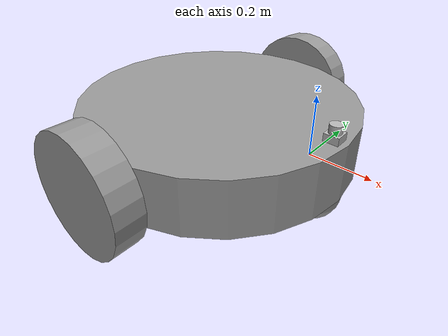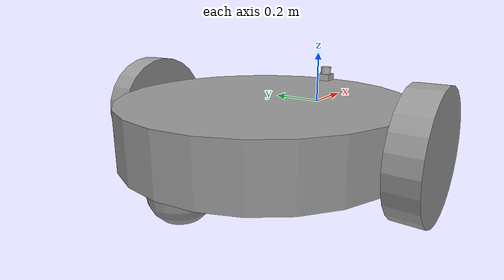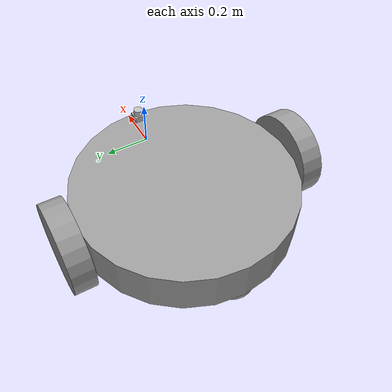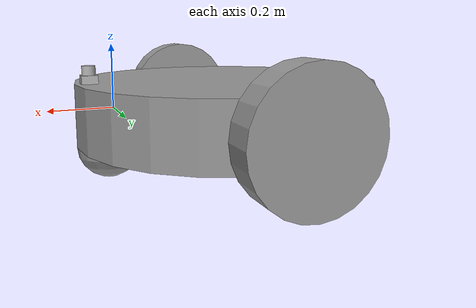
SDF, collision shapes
<?xml version='1.0'?>
<sdf version='1.7'>
  <model name='ddr1'>
    <link name='link_0'>
      <inertial>
        <mass>92.2843</mass>
        <inertia>
          <ixx>5.84467</ixx>
          <ixy>0</ixy>
          <ixz>0</ixz>
          <iyy>5.84467</iyy>
          <iyz>0</iyz>
          <izz>11.5355</izz>
        </inertia>
        <pose>0 0 0 0 -0 0</pose>
      </inertial>
      <pose>-0.383634 0.0024 -0.020094 0 -0 0</pose>
      <gravity>1</gravity>
      <self_collide>0</self_collide>
      <kinematic>0</kinematic>
      <enable_wind>0</enable_wind>
      <visual name='visual'>
        <pose>0 0 0 0 -0 0</pose>
        <geometry>
          <cylinder>
            <radius>0.5</radius>
            <length>0.2</length>
          </cylinder>
        </geometry>
        <material>
          <lighting>1</lighting>
          <script>
            <uri>file://media/materials/scripts/gazebo.material</uri>
            <name>Gazebo/Grey</name>
          </script>
          <shader type='pixel'>
            <normal_map>__default__</normal_map>
          </shader>
          <ambient>0.3 0.3 0.3 1</ambient>
          <diffuse>0.7 0.7 0.7 1</diffuse>
          <specular>0.01 0.01 0.01 1</specular>
          <emissive>0 0 0 1</emissive>
        </material>
        <transparency>0</transparency>
        <cast_shadows>1</cast_shadows>
      </visual>
      <collision name='collision'>
        <laser_retro>0</laser_retro>
        <max_contacts>10</max_contacts>
        <pose>0 0 0 0 -0 0</pose>
        <geometry>
          <cylinder>
            <radius>0.5</radius>
            <length>0.2</length>
          </cylinder>
        </geometry>
        <surface>
          <friction>
            <ode>
              <mu>1</mu>
              <mu2>1</mu2>
              <fdir1>0 0 0</fdir1>
              <slip1>0</slip1>
              <slip2>0</slip2>
            </ode>
            <torsional>
              <coefficient>1</coefficient>
              <patch_radius>0</patch_radius>
              <surface_radius>0</surface_radius>
              <use_patch_radius>1</use_patch_radius>
              <ode>
                <slip>0</slip>
              </ode>
            </torsional>
          </friction>
          <bounce>
            <restitution_coefficient>0</restitution_coefficient>
            <threshold>1e+06</threshold>
          </bounce>
          <contact>
            <collide_without_contact>0</collide_without_contact>
            <collide_without_contact_bitmask>1</collide_without_contact_bitmask>
            <collide_bitmask>1</collide_bitmask>
            <ode>
              <soft_cfm>0</soft_cfm>
              <soft_erp>0.2</soft_erp>
              <kp>1e+13</kp>
              <kd>1</kd>
              <max_vel>0.01</max_vel>
              <min_depth>0</min_depth>
            </ode>
            <bullet>
              <split_impulse>1</split_impulse>
              <split_impulse_penetration_threshold>-0.01</split_impulse_penetration_threshold>
              <soft_cfm>0</soft_cfm>
              <soft_erp>0.2</soft_erp>
              <kp>1e+13</kp>
              <kd>1</kd>
            </bullet>
          </contact>
        </surface>
      </collision>
    </link>
    <link name='link_2'>
      <inertial>
        <mass>39.3746</mass>
        <inertia>
          <ixx>0.629994</ixx>
          <ixy>0</ixy>
          <ixz>0</ixz>
          <iyy>0.629994</iyy>
          <iyz>0</iyz>
          <izz>0.629994</izz>
        </inertia>
        <pose>0 0 0 0 -0 0</pose>
      </inertial>
      <pose>-0.783634 0.0024 -0.120094 0 -0 0</pose>
      <gravity>1</gravity>
      <self_collide>0</self_collide>
      <kinematic>0</kinematic>
      <enable_wind>0</enable_wind>
      <visual name='visual'>
        <pose>0 0 0 0 -0 0</pose>
        <geometry>
          <sphere>
            <radius>0.1</radius>
          </sphere>
        </geometry>
        <material>
          <lighting>1</lighting>
          <script>
            <uri>file://media/materials/scripts/gazebo.material</uri>
            <name>Gazebo/Grey</name>
          </script>
          <shader type='pixel'>
            <normal_map>__default__</normal_map>
          </shader>
          <ambient>0.3 0.3 0.3 1</ambient>
          <diffuse>0.7 0.7 0.7 1</diffuse>
          <specular>0.01 0.01 0.01 1</specular>
          <emissive>0 0 0 1</emissive>
        </material>
        <transparency>0</transparency>
        <cast_shadows>1</cast_shadows>
      </visual>
      <collision name='collision'>
        <laser_retro>0</laser_retro>
        <max_contacts>10</max_contacts>
        <pose>0 0 0 0 -0 0</pose>
        <geometry>
          <sphere>
            <radius>0.1</radius>
          </sphere>
        </geometry>
        <surface>
          <friction>
            <ode>
              <mu>1</mu>
              <mu2>1</mu2>
              <fdir1>0 0 0</fdir1>
              <slip1>0</slip1>
              <slip2>0</slip2>
            </ode>
            <torsional>
              <coefficient>1</coefficient>
              <patch_radius>0</patch_radius>
              <surface_radius>0</surface_radius>
              <use_patch_radius>1</use_patch_radius>
              <ode>
                <slip>0</slip>
              </ode>
            </torsional>
          </friction>
          <bounce>
            <restitution_coefficient>0</restitution_coefficient>
            <threshold>1e+06</threshold>
          </bounce>
          <contact>
            <collide_without_contact>0</collide_without_contact>
            <collide_without_contact_bitmask>1</collide_without_contact_bitmask>
            <collide_bitmask>1</collide_bitmask>
            <ode>
              <soft_cfm>0</soft_cfm>
              <soft_erp>0.2</soft_erp>
              <kp>1e+13</kp>
              <kd>1</kd>
              <max_vel>0.01</max_vel>
              <min_depth>0</min_depth>
            </ode>
            <bullet>
              <split_impulse>1</split_impulse>
              <split_impulse_penetration_threshold>-0.01</split_impulse_penetration_threshold>
              <soft_cfm>0</soft_cfm>
              <soft_erp>0.2</soft_erp>
              <kp>1e+13</kp>
              <kd>1</kd>
            </bullet>
          </contact>
        </surface>
      </collision>
    </link>
    <link name='link_2_clone'>
      <inertial>
        <mass>39.3746</mass>
        <inertia>
          <ixx>0.629994</ixx>
          <ixy>0</ixy>
          <ixz>0</ixz>
          <iyy>0.629994</iyy>
          <iyz>0</iyz>
          <izz>0.629994</izz>
        </inertia>
        <pose>0 0 0 0 -0 0</pose>
      </inertial>
      <pose>0.016366 0.0024 -0.120094 0 -0 0</pose>
      <gravity>1</gravity>
      <self_collide>0</self_collide>
      <kinematic>0</kinematic>
      <enable_wind>0</enable_wind>
      <visual name='visual'>
        <pose>0 0 0 0 -0 0</pose>
        <geometry>
          <sphere>
            <radius>0.1</radius>
          </sphere>
        </geometry>
        <material>
          <lighting>1</lighting>
          <script>
            <uri>file://media/materials/scripts/gazebo.material</uri>
            <name>Gazebo/Grey</name>
          </script>
          <shader type='pixel'>
            <normal_map>__default__</normal_map>
          </shader>
          <ambient>0.3 0.3 0.3 1</ambient>
          <diffuse>0.7 0.7 0.7 1</diffuse>
          <specular>0.01 0.01 0.01 1</specular>
          <emissive>0 0 0 1</emissive>
        </material>
        <transparency>0</transparency>
        <cast_shadows>1</cast_shadows>
      </visual>
      <collision name='collision'>
        <laser_retro>0</laser_retro>
        <max_contacts>10</max_contacts>
        <pose>0 0 0 0 -0 0</pose>
        <geometry>
          <sphere>
            <radius>0.1</radius>
          </sphere>
        </geometry>
        <surface>
          <friction>
            <ode>
              <mu>1</mu>
              <mu2>1</mu2>
              <fdir1>0 0 0</fdir1>
              <slip1>0</slip1>
              <slip2>0</slip2>
            </ode>
            <torsional>
              <coefficient>1</coefficient>
              <patch_radius>0</patch_radius>
              <surface_radius>0</surface_radius>
              <use_patch_radius>1</use_patch_radius>
              <ode>
                <slip>0</slip>
              </ode>
            </torsional>
          </friction>
          <bounce>
            <restitution_coefficient>0</restitution_coefficient>
            <threshold>1e+06</threshold>
          </bounce>
          <contact>
            <collide_without_contact>0</collide_without_contact>
            <collide_without_contact_bitmask>1</collide_without_contact_bitmask>
            <collide_bitmask>1</collide_bitmask>
            <ode>
              <soft_cfm>0</soft_cfm>
              <soft_erp>0.2</soft_erp>
              <kp>1e+13</kp>
              <kd>1</kd>
              <max_vel>0.01</max_vel>
              <min_depth>0</min_depth>
            </ode>
            <bullet>
              <split_impulse>1</split_impulse>
              <split_impulse_penetration_threshold>-0.01</split_impulse_penetration_threshold>
              <soft_cfm>0</soft_cfm>
              <soft_erp>0.2</soft_erp>
              <kp>1e+13</kp>
              <kd>1</kd>
            </bullet>
          </contact>
        </surface>
      </collision>
    </link>
    <link name='link_3'>
      <inertial>
        <mass>922.843</mass>
        <inertia>
          <ixx>134.581</ixx>
          <ixy>0</ixy>
          <ixz>0</ixz>
          <iyy>134.581</iyy>
          <iyz>0</iyz>
          <izz>115.355</izz>
        </inertia>
        <pose>0 0 0 0 -0 0</pose>
      </inertial>
      <pose>-0.383634 0.5524 -0.020094 1.5707 -0 0</pose>
      <gravity>1</gravity>
      <self_collide>0</self_collide>
      <kinematic>0</kinematic>
      <enable_wind>0</enable_wind>
      <visual name='visual'>
        <pose>0 0 -0 0 -0 0</pose>
        <geometry>
          <cylinder>
            <radius>0.2</radius>
            <length>0.1</length>
          </cylinder>
        </geometry>
        <material>
          <lighting>1</lighting>
          <script>
            <uri>file://media/materials/scripts/gazebo.material</uri>
            <name>Gazebo/Grey</name>
          </script>
          <shader type='pixel'>
            <normal_map>__default__</normal_map>
          </shader>
          <ambient>0.3 0.3 0.3 1</ambient>
          <diffuse>0.7 0.7 0.7 1</diffuse>
          <specular>0.01 0.01 0.01 1</specular>
          <emissive>0 0 0 1</emissive>
        </material>
        <transparency>0</transparency>
        <cast_shadows>1</cast_shadows>
      </visual>
      <collision name='collision'>
        <laser_retro>0</laser_retro>
        <max_contacts>10</max_contacts>
        <pose>0 0 0 0 -0 0</pose>
        <geometry>
          <cylinder>
            <radius>0.2</radius>
            <length>0.1</length>
          </cylinder>
        </geometry>
        <surface>
          <friction>
            <ode>
              <mu>1</mu>
              <mu2>1</mu2>
              <fdir1>0 0 0</fdir1>
              <slip1>0</slip1>
              <slip2>0</slip2>
            </ode>
            <torsional>
              <coefficient>1</coefficient>
              <patch_radius>0</patch_radius>
              <surface_radius>0</surface_radius>
              <use_patch_radius>1</use_patch_radius>
              <ode>
                <slip>0</slip>
              </ode>
            </torsional>
          </friction>
          <bounce>
            <restitution_coefficient>0</restitution_coefficient>
            <threshold>1e+06</threshold>
          </bounce>
          <contact>
            <collide_without_contact>0</collide_without_contact>
            <collide_without_contact_bitmask>1</collide_without_contact_bitmask>
            <collide_bitmask>1</collide_bitmask>
            <ode>
              <soft_cfm>0</soft_cfm>
              <soft_erp>0.2</soft_erp>
              <kp>1e+13</kp>
              <kd>1</kd>
              <max_vel>0.01</max_vel>
              <min_depth>0</min_depth>
            </ode>
            <bullet>
              <split_impulse>1</split_impulse>
              <split_impulse_penetration_threshold>-0.01</split_impulse_penetration_threshold>
              <soft_cfm>0</soft_cfm>
              <soft_erp>0.2</soft_erp>
              <kp>1e+13</kp>
              <kd>1</kd>
            </bullet>
          </contact>
        </surface>
      </collision>
    </link>
    <link name='link_3_clone'>
      <inertial>
        <mass>922.843</mass>
        <inertia>
          <ixx>134.581</ixx>
          <ixy>0</ixy>
          <ixz>0</ixz>
          <iyy>134.581</iyy>
          <iyz>0</iyz>
          <izz>115.355</izz>
        </inertia>
        <pose>0 0 0 0 -0 0</pose>
      </inertial>
      <pose>-0.383634 -0.5476 -0.020094 1.5707 -0 0</pose>
      <gravity>1</gravity>
      <self_collide>0</self_collide>
      <kinematic>0</kinematic>
      <enable_wind>0</enable_wind>
      <visual name='visual'>
        <pose>0 0 0 0 -0 0</pose>
        <geometry>
          <cylinder>
            <radius>0.2</radius>
            <length>0.1</length>
          </cylinder>
        </geometry>
        <material>
          <lighting>1</lighting>
          <script>
            <uri>file://media/materials/scripts/gazebo.material</uri>
            <name>Gazebo/Grey</name>
          </script>
          <shader type='pixel'>
            <normal_map>__default__</normal_map>
          </shader>
          <ambient>0.3 0.3 0.3 1</ambient>
          <diffuse>0.7 0.7 0.7 1</diffuse>
          <specular>0.01 0.01 0.01 1</specular>
          <emissive>0 0 0 1</emissive>
        </material>
        <transparency>0</transparency>
        <cast_shadows>1</cast_shadows>
      </visual>
      <collision name='collision'>
        <laser_retro>0</laser_retro>
        <max_contacts>10</max_contacts>
        <pose>0 0 0 0 -0 0</pose>
        <geometry>
          <cylinder>
            <radius>0.2</radius>
            <length>0.1</length>
          </cylinder>
        </geometry>
        <surface>
          <friction>
            <ode>
              <mu>1</mu>
              <mu2>1</mu2>
              <fdir1>0 0 0</fdir1>
              <slip1>0</slip1>
              <slip2>0</slip2>
            </ode>
            <torsional>
              <coefficient>1</coefficient>
              <patch_radius>0</patch_radius>
              <surface_radius>0</surface_radius>
              <use_patch_radius>1</use_patch_radius>
              <ode>
                <slip>0</slip>
              </ode>
            </torsional>
          </friction>
          <bounce>
            <restitution_coefficient>0</restitution_coefficient>
            <threshold>1e+06</threshold>
          </bounce>
          <contact>
            <collide_without_contact>0</collide_without_contact>
            <collide_without_contact_bitmask>1</collide_without_contact_bitmask>
            <collide_bitmask>1</collide_bitmask>
            <ode>
              <soft_cfm>0</soft_cfm>
              <soft_erp>0.2</soft_erp>
              <kp>1e+13</kp>
              <kd>1</kd>
              <max_vel>0.01</max_vel>
              <min_depth>0</min_depth>
            </ode>
            <bullet>
              <split_impulse>1</split_impulse>
              <split_impulse_penetration_threshold>-0.01</split_impulse_penetration_threshold>
              <soft_cfm>0</soft_cfm>
              <soft_erp>0.2</soft_erp>
              <kp>1e+13</kp>
              <kd>1</kd>
            </bullet>
          </contact>
        </surface>
      </collision>
    </link>
    <model name='hokuyo'>
      <pose>0.071532 0.000332 0.100472 0 -0 0</pose>
      <link name='link'>
        <inertial>
          <mass>0.1</mass>
        </inertial>
        <visual name='visual'>
          <geometry>
            <mesh>
              <uri>model://hokuyo/meshes/hokuyo.dae</uri>
            </mesh>
          </geometry>
        </visual>
        <collision name='collision-base'>
          <pose>0 0 -0.0145 0 -0 0</pose>
          <geometry>
            <box>
              <size>0.05 0.05 0.041</size>
            </box>
          </geometry>
        </collision>
        <collision name='collision-top'>
          <pose>0 0 0.0205 0 -0 0</pose>
          <geometry>
            <cylinder>
              <radius>0.021</radius>
              <length>0.029</length>
            </cylinder>
          </geometry>
        </collision>
        <sensor name='laser' type='ray'>
          <pose>0.01 0 0.0175 0 -0 0</pose>
          <ray>
            <scan>
              <horizontal>
                <samples>640</samples>
                <resolution>1</resolution>
                <min_angle>-2.26889</min_angle>
                <max_angle>2.2689</max_angle>
              </horizontal>
            </scan>
            <range>
              <min>0.08</min>
              <max>10</max>
              <resolution>0.01</resolution>
            </range>
          </ray>
          <!--plugin name='laser' filename='libRayPlugin.so'/-->
          <plugin name='gazebo_ros_head_hokuyo_controller' filename='libgazebo_ros_laser.so'>
            <topicName>/myrobot/laser/scan</topicName>
            <frameName>sensor_scan</frameName>
          </plugin>
          <always_on>1</always_on>
          <update_rate>30</update_rate>
          <visualize>1</visualize>
        </sensor>
      </link>
    </model>
    <joint name='link_0_JOINT_2' type='ball'>
      <parent>link_0</parent>
      <child>link_2</child>
      <pose>0 0 0 -0.02 0 0</pose>
      <physics>
        <ode>
          <limit>
            <cfm>0</cfm>
            <erp>0.2</erp>
          </limit>
          <suspension>
            <cfm>0</cfm>
            <erp>0.2</erp>
          </suspension>
        </ode>
      </physics>
    </joint>
    <joint name='link_0_JOINT_3' type='ball'>
      <parent>link_0</parent>
      <child>link_2_clone</child>
      <pose>0 0 0 0 -0 0</pose>
      <physics>
        <ode>
          <limit>
            <cfm>0</cfm>
            <erp>0.2</erp>
          </limit>
          <suspension>
            <cfm>0</cfm>
            <erp>0.2</erp>
          </suspension>
        </ode>
      </physics>
    </joint>
    <joint name='link_0_JOINT_4' type='revolute'>
      <parent>link_0</parent>
      <child>link_3</child>
      <pose>0 0 0 0 -0 0</pose>
      <axis>
        <xyz>0 0 1</xyz>
        <limit>
          <lower>-1.79769e+308</lower>
          <upper>1.79769e+308</upper>
          <effort>-1</effort>
          <velocity>-1</velocity>
        </limit>
        <dynamics>
          <spring_reference>0</spring_reference>
          <spring_stiffness>0</spring_stiffness>
          <damping>0</damping>
          <friction>0</friction>
        </dynamics>
      </axis>
      <physics>
        <ode>
          <limit>
            <cfm>0</cfm>
            <erp>0.2</erp>
          </limit>
          <suspension>
            <cfm>0</cfm>
            <erp>0.2</erp>
          </suspension>
        </ode>
      </physics>
    </joint>
    <joint name='link_0_JOINT_5' type='revolute'>
      <parent>link_0</parent>
      <child>link_3_clone</child>
      <pose>0 0 0 0 -0 0</pose>
      <axis>
        <xyz>-0 -0 -1</xyz>
        <limit>
          <lower>-1.79769e+308</lower>
          <upper>1.79769e+308</upper>
          <effort>-1</effort>
          <velocity>-1</velocity>
        </limit>
        <dynamics>
          <spring_reference>0</spring_reference>
          <spring_stiffness>0</spring_stiffness>
          <damping>0</damping>
        </dynamics>
      </axis>
      <physics>
        <ode>
          <limit>
            <cfm>0</cfm>
            <erp>0.2</erp>
          </limit>
          <suspension>
            <cfm>0</cfm>
            <erp>0.2</erp>
          </suspension>
        </ode>
      </physics>
    </joint>
    <joint name='link_0_JOINT_8' type='fixed'>
      <parent>link_0</parent>
      <child>hokuyo::link</child>
      <pose>0 0 0 0 -0 0</pose>
      <physics>
        <ode>
          <limit>
            <cfm>0</cfm>
            <erp>0.2</erp>
          </limit>
          <suspension>
            <cfm>0</cfm>
            <erp>0.2</erp>
          </suspension>
        </ode>
      </physics>
    </joint>
    <static>0</static>
    <allow_auto_disable>1</allow_auto_disable>
    <plugin name='differential_drive_controller' filename='libgazebo_ros_diff_drive.so'>
      <legacyMode>0</legacyMode>
      <alwaysOn>1</alwaysOn>
      <updateRate>20</updateRate>
      <leftJoint>link_0_JOINT_4</leftJoint>
      <rightJoint>link_0_JOINT_5</rightJoint>
      <wheelSeparation>0.5</wheelSeparation>
      <wheelDiameter>0.4</wheelDiameter>
      <torque>10</torque>
      <commandTopic>cmd_vel</commandTopic>
      <odometryTopic>odom</odometryTopic>
      <odometryFrame>odom</odometryFrame>
      <robotBaseFrame>link_0</robotBaseFrame>
    </plugin>
  </model>
</sdf>
